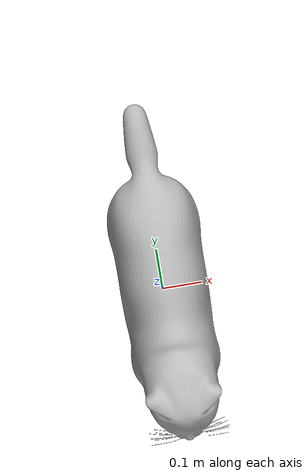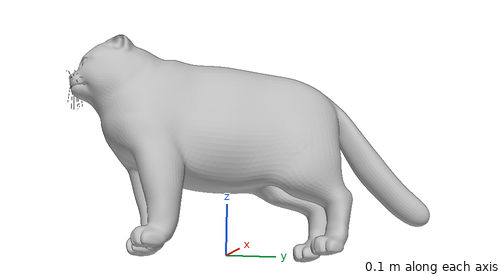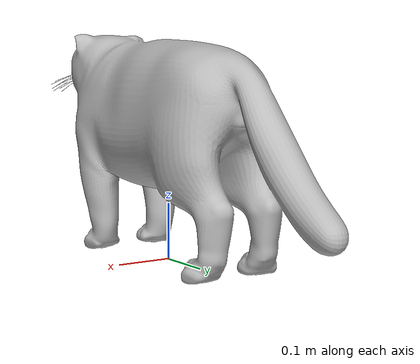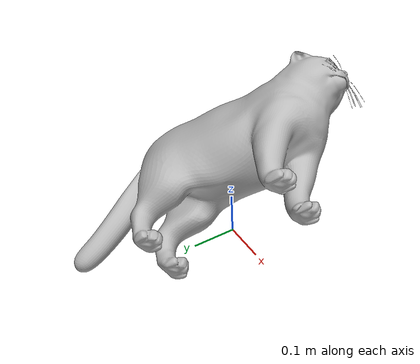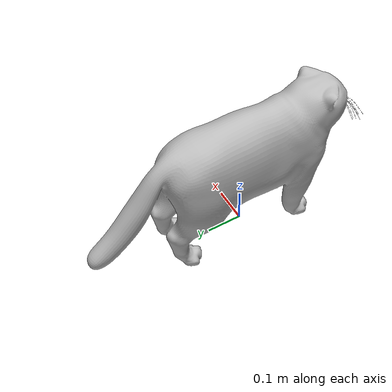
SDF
<?xml version="1.0"?>
<sdf version="1.7">
  <model name="cat_v1">
    <static>true</static>
    <link name="link">
      <pose>0 0 0 0 0 0</pose>
      <visual name="visual">
        <geometry>
          <mesh>
            <uri>model://cat_v1/Pallas_Cat_v1_L3.123c73c389ba-5b7e-45f0-bbdf-03883fadcd3f/13578_Pallas_Cat_v1_L3.obj</uri>
            <scale>0.015 0.015 0.015</scale>
          </mesh>
        </geometry>
      </visual>
      <collision name="collision">
        <pose>0 0.0644 0.2040 0 0 0</pose>
        <geometry>
          <box>
            <size>0.21 0.77 0.41</size>
          </box>
        </geometry>
      </collision>
    </link>
  </model>
</sdf>
